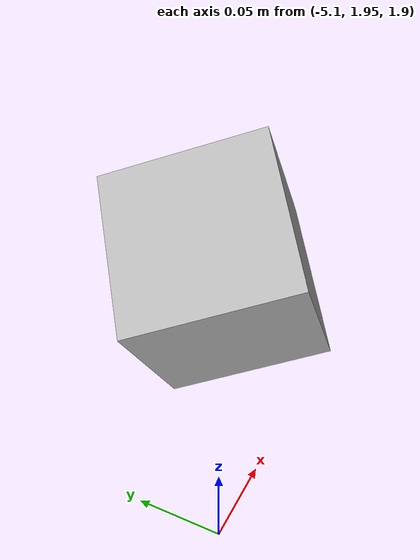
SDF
<?xml version="1.0"?>
<sdf version="1.4">

  <world name="default">
    <include>
      <uri>model://sun</uri>
    </include>
    <include>
      <uri>model://ground_plane</uri>
    </include>
    <physics type="ode">
      <real_time_update_rate>1000.0</real_time_update_rate>
      <gravity>0.0 0.0 -9.81</gravity>
    </physics>

    <model name='camera'>
      <static>true</static>
      <pose>-5 2 2 1 1 0</pose>
      <link name='link'>
        <visual name='visual'>
          <geometry>
            <box>
              <size>0.1 0.1 0.1</size>
            </box>
          </geometry>
        </visual>
        <sensor name='my_camera' type='camera'>
          <camera>
            <save enabled="true">
              <path>/tmp/camera_save_tutorial</path>
            </save>
            <horizontal_fov>1.047</horizontal_fov>
            <image>
              <width>1920</width>
              <height>1080</height>
            </image>
            <clip>
              <near>0.1</near>
              <far>100</far>
            </clip>
          </camera>
          <always_on>1</always_on>
          <update_rate>30</update_rate>
        </sensor>
      </link>
    </model>
  </world>
</sdf>
